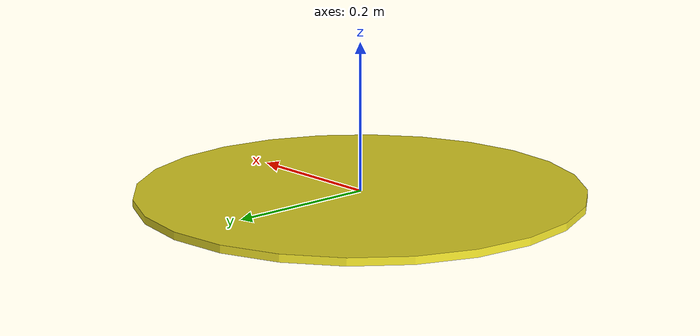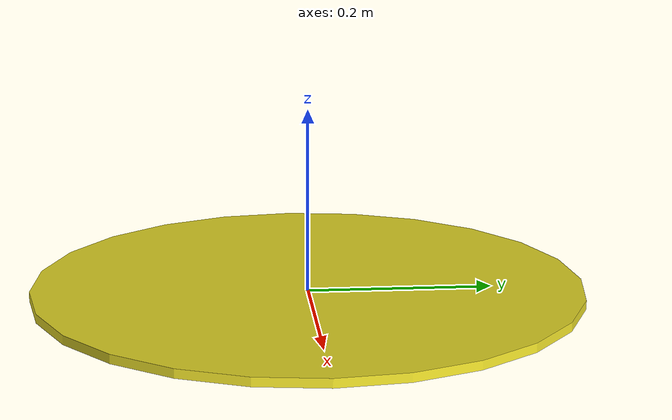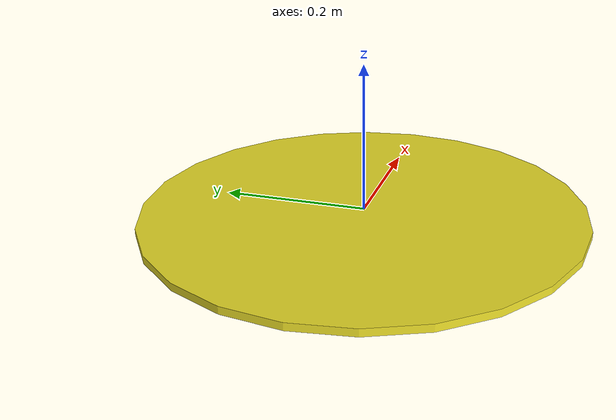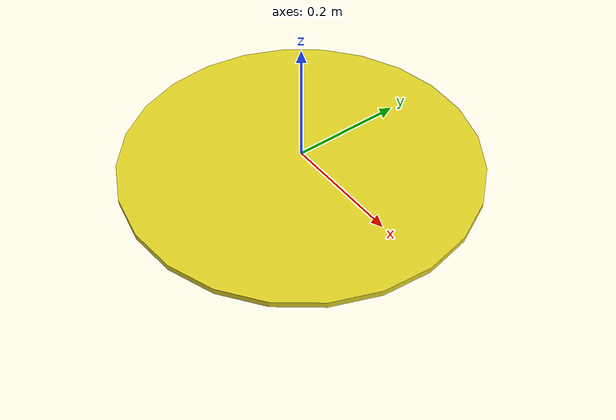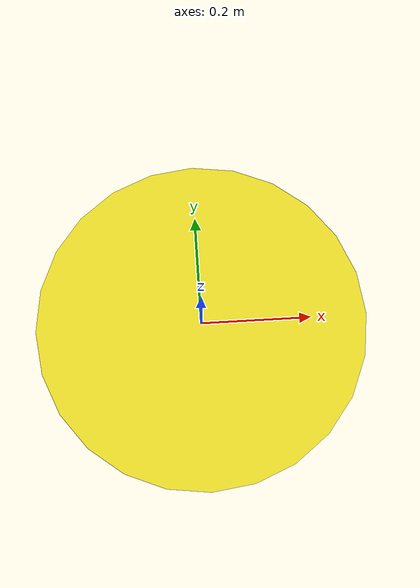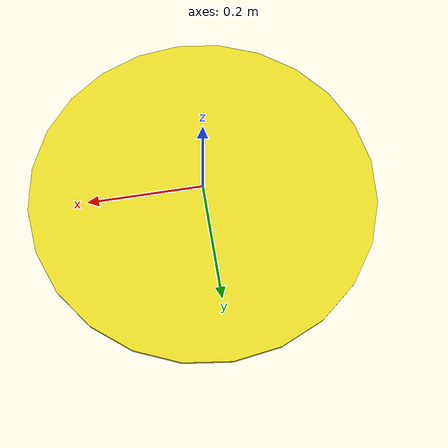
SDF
<?xml version='1.0'?>
<sdf version='1.6'>
  <model name='goal_box'>
    <pose frame=''>0 0 0 0 -0 -1.5708</pose>
    <link name='goal_box'>
      <visual name='goal_box'>
        <pose frame=''>0 0 0.0005 0 -0 0</pose>
        <geometry>
          <cylinder>
            <radius>0.3</radius>
            <length>0.01</length>
          </cylinder>
        </geometry>
        <material>
          <script>
            <uri>file://media/materials/scripts/gazebo.material</uri>
            <name>Gazebo/Yellow</name>
          </script>
          <ambient>1 0 0 1</ambient>
        </material>
      </visual>
      <pose frame=''>0 0 0 0 -0 0</pose>
    </link>
    <static>1</static>
  </model>
</sdf>
